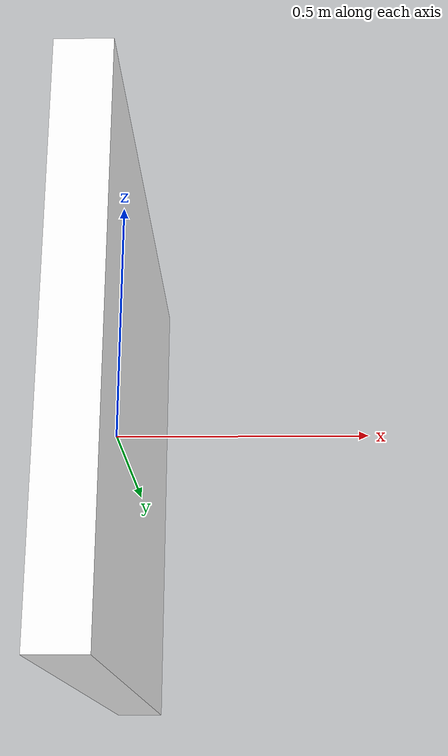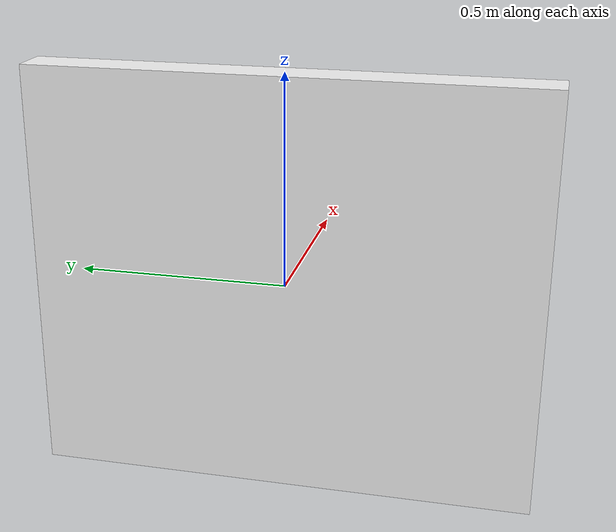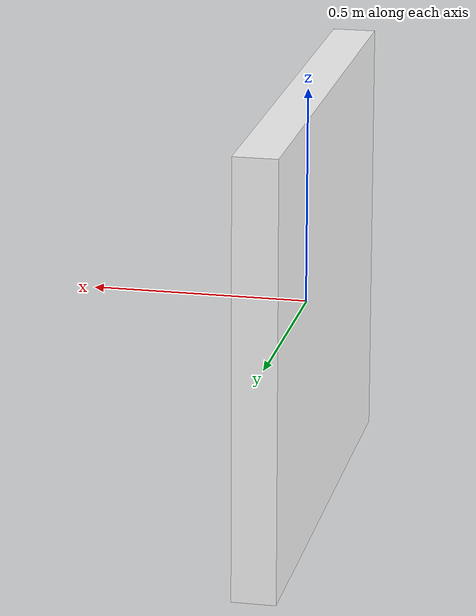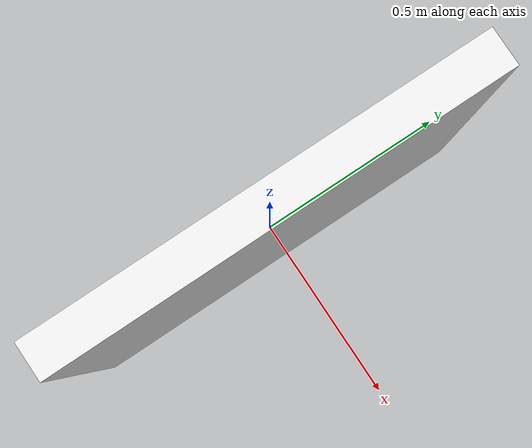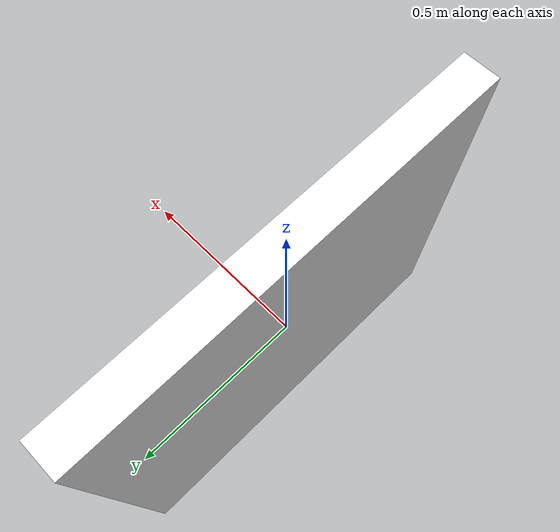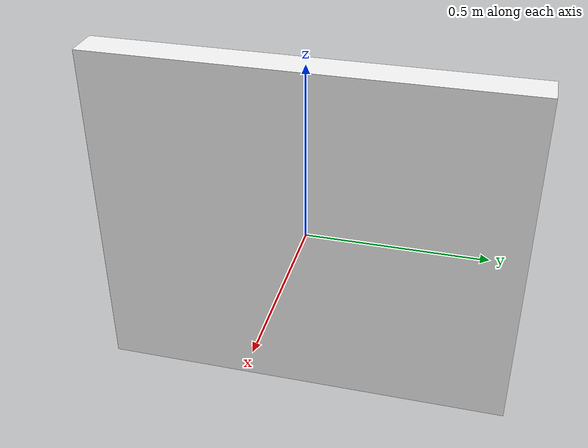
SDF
<?xml version="1.0" ?>
<sdf version="1.6">
  <model name="ventana_abierta">
    <static>true</static>
    <link name="link">
      <collision name="collision">
        <geometry>
          <box>
            <size>0.1 1.2 1.0</size>
          </box>
        </geometry>
      </collision>
      <visual name="visual">
        <geometry>
          <box>
            <size>0.1 1.2 1.0</size>
          </box>
        </geometry>
        <material>
          <ambient>1 1 1 1</ambient>
          <diffuse>1 1 1 1</diffuse>
          <pbr>
            <metal>
              <albedo_map>materials/textures/textura_ventana_abierta.png</albedo_map>
              <roughness>1.0</roughness>
              <metalness>0.0</metalness>
            </metal>
          </pbr>
        </material>
      </visual>
    </link>
  </model>
</sdf>
